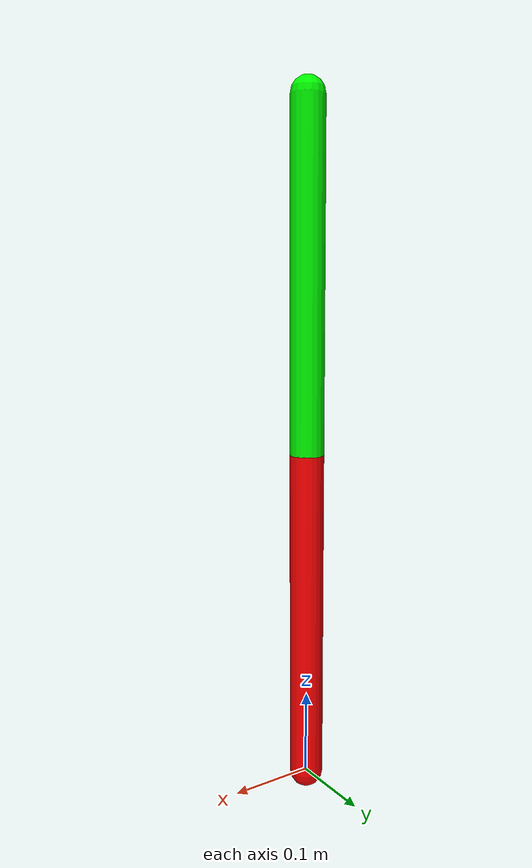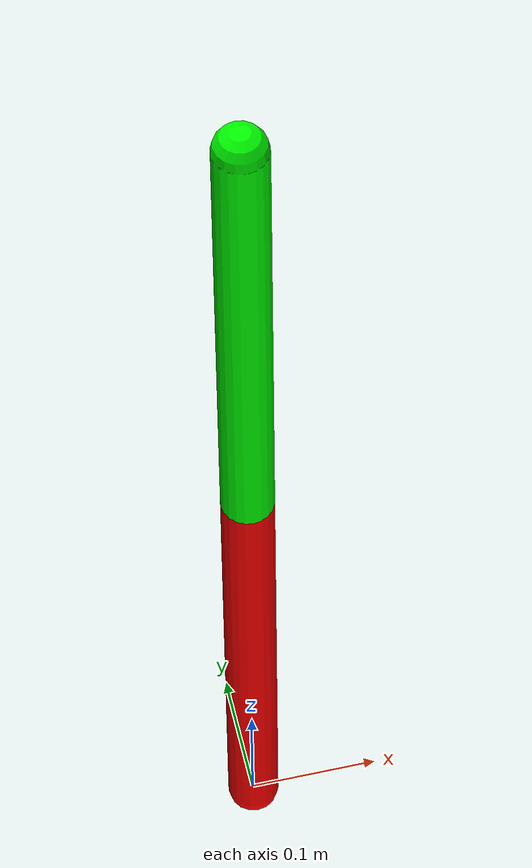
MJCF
<mujoco model="compound_joint">
  <compiler angle="radian"/>
  <option gravity="0 0 0"/>
  <worldbody>
    <body name="base" pos="0 0 0">
      <!-- seg1 carries TWO revolute joints (compound joints on the same body) -->
      <body name="seg1" pos="0 0 0">
        <joint name="j_x" axis="1 0 0" type="hinge"/>
        <joint name="j_y" axis="0 1 0" type="hinge"/>
        <geom type="capsule" fromto="0 0 0 0 0 0.4" size="0.02" rgba="1 0 0 1"/>
        <body name="seg2" pos="0 0 0.4">
          <joint name="j_z" axis="0 0 1" type="hinge"/>
          <geom type="capsule" fromto="0 0 0 0 0 0.4" size="0.02" rgba="0 1 0 1"/>
        </body>
      </body>
    </body>
  </worldbody>
</mujoco>
